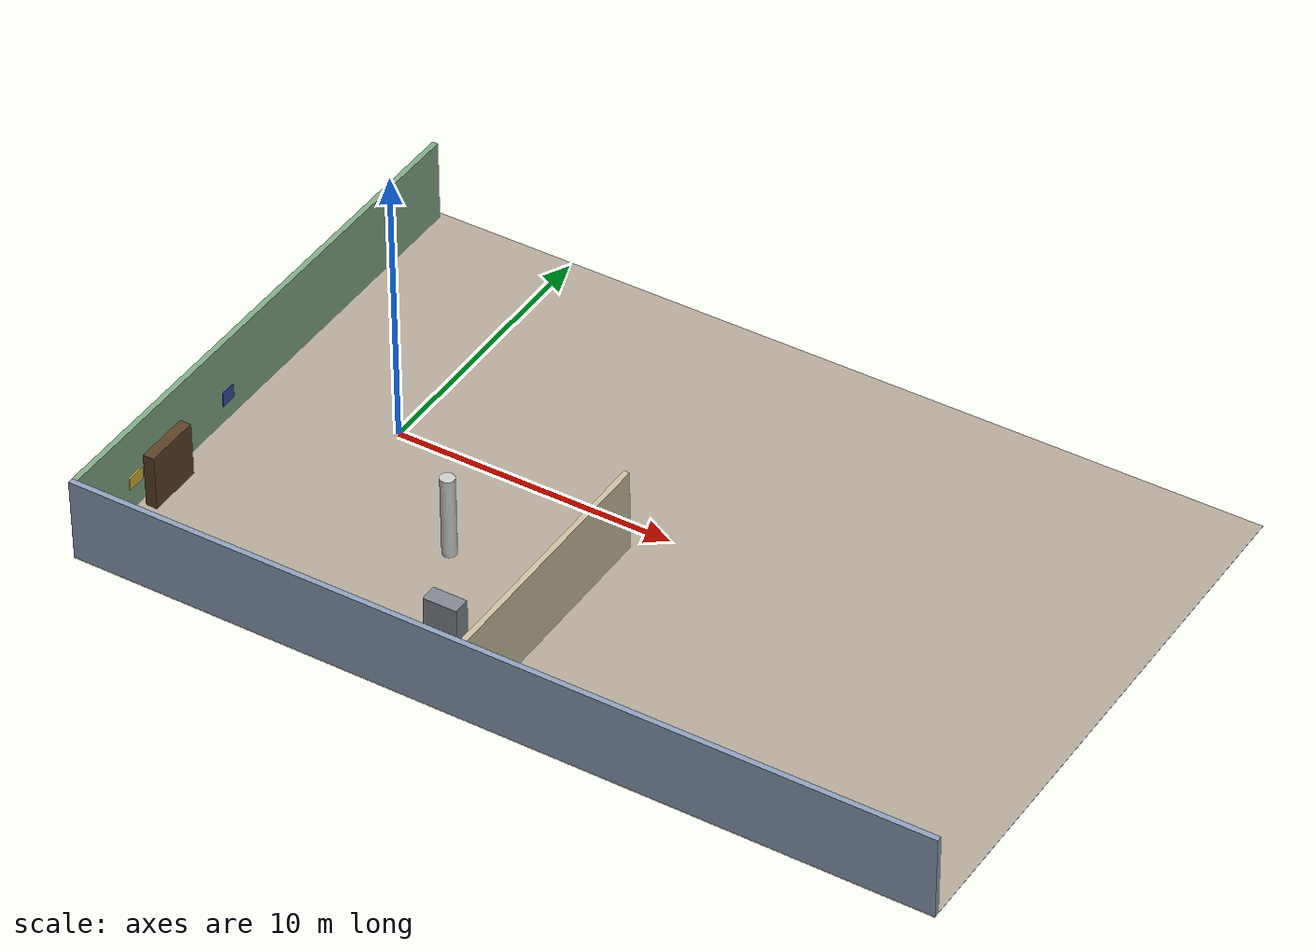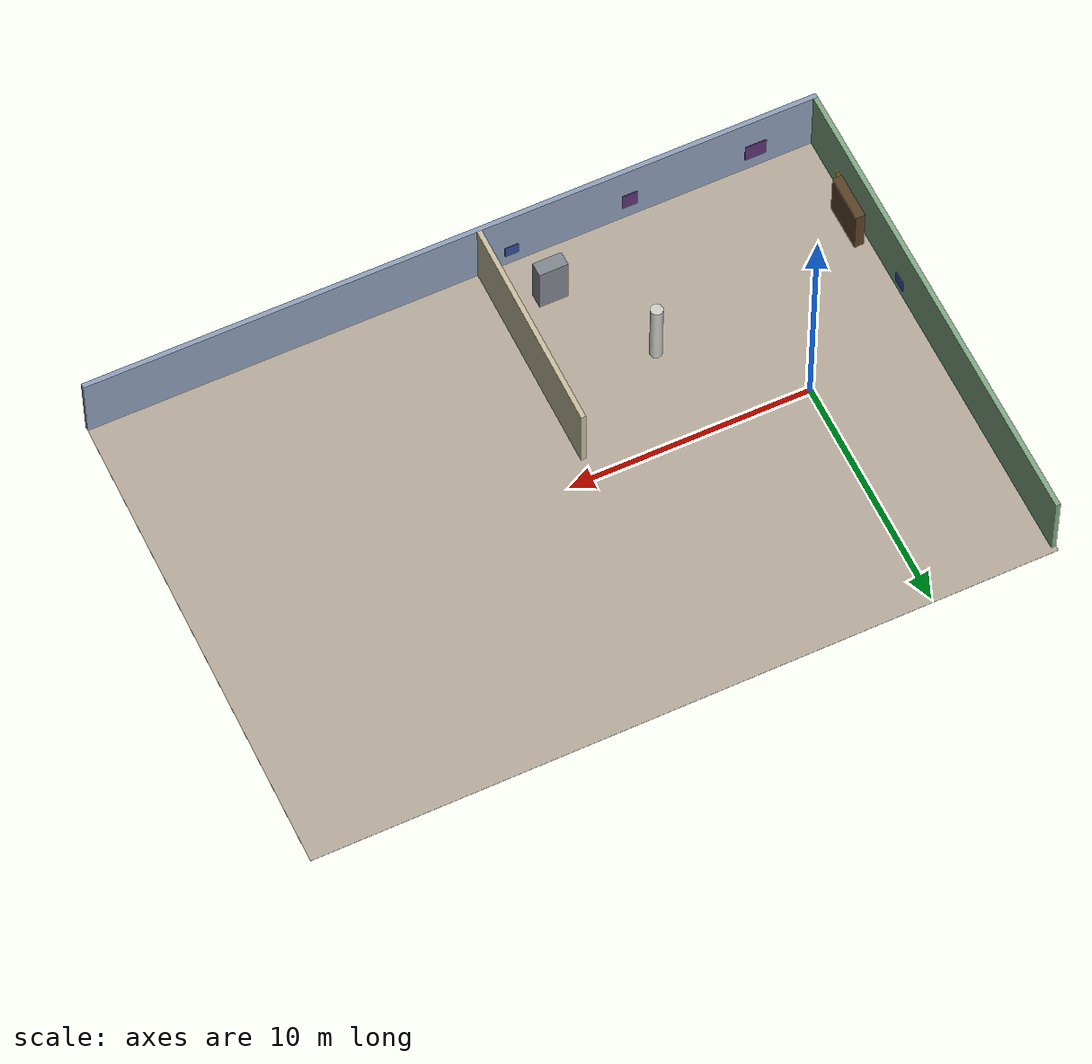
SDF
<sdf version="1.9">
 <world name="hyrak_indoor">
  <model name="floor">
   <static>true</static>
   <pose>10.000 0.000 -0.010 0 0 0.0000</pose>
   <link name="link">
    <collision name="c"><geometry><box><size>30.400 20.400 0.020</size></box></geometry></collision>
    <visual name="v">
     <geometry><box><size>30.400 20.400 0.020</size></box></geometry>
     <material>
      <ambient>0.7 0.66 0.6 1</ambient>
      <diffuse>0.7 0.66 0.6 1</diffuse>
      <specular>0.05 0.05 0.05 1</specular>
      <pbr>
       <metal>
        <albedo_map>model://hyrak_indoor_assets/materials/textures/floor.jpg</albedo_map>
        <roughness>0.9</roughness>
        <metalness>0</metalness>
       </metal>
      </pbr>
     </material>
     <cast_shadows>false</cast_shadows>
    </visual>
   </link>
  </model>
  <model name="wall_south_0">
   <static>true</static>
   <pose>10.000 -10.100 1.500 0 0 0.0000</pose>
   <link name="link">
    <collision name="c"><geometry><box><size>30.400 0.200 3.000</size></box></geometry></collision>
    <visual name="v">
     <geometry><box><size>30.400 0.200 3.000</size></box></geometry>
     <material>
      <ambient>0.55 0.62 0.72 1</ambient>
      <diffuse>0.55 0.62 0.72 1</diffuse>
      <specular>0.05 0.05 0.05 1</specular>
     </material>
     <cast_shadows>false</cast_shadows>
    </visual>
   </link>
  </model>
  <model name="wall_west_0">
   <static>true</static>
   <pose>-5.100 0.000 1.500 0 0 0.0000</pose>
   <link name="link">
    <collision name="c"><geometry><box><size>0.200 20.000 3.000</size></box></geometry></collision>
    <visual name="v">
     <geometry><box><size>0.200 20.000 3.000</size></box></geometry>
     <material>
      <ambient>0.5 0.66 0.52 1</ambient>
      <diffuse>0.5 0.66 0.52 1</diffuse>
      <specular>0.05 0.05 0.05 1</specular>
     </material>
     <cast_shadows>false</cast_shadows>
    </visual>
   </link>
  </model>
  <model name="wall_a_0">
   <static>true</static>
   <pose>9.000 -5.450 1.500 0 0 0.0000</pose>
   <link name="link">
    <collision name="c"><geometry><box><size>0.200 9.100 3.000</size></box></geometry></collision>
    <visual name="v">
     <geometry><box><size>0.200 9.100 3.000</size></box></geometry>
     <material>
      <ambient>0.78 0.74 0.62 1</ambient>
      <diffuse>0.78 0.74 0.62 1</diffuse>
      <specular>0.05 0.05 0.05 1</specular>
     </material>
     <cast_shadows>false</cast_shadows>
    </visual>
   </link>
  </model>
  <model name="pan_s0">
   <static>true</static>
   <pose>-2.538 -9.870 1.279 0 0 0.0000</pose>
   <link name="link">
    <collision name="c"><geometry><box><size>0.892 0.040 0.862</size></box></geometry></collision>
    <visual name="v">
     <geometry><box><size>0.892 0.040 0.862</size></box></geometry>
     <material>
      <ambient>0.35 0.2 0.45 1</ambient>
      <diffuse>0.35 0.2 0.45 1</diffuse>
      <specular>0.05 0.05 0.05 1</specular>
     </material>
     <cast_shadows>false</cast_shadows>
    </visual>
   </link>
  </model>
  <model name="pan_s1">
   <static>true</static>
   <pose>2.784 -9.870 1.285 0 0 0.0000</pose>
   <link name="link">
    <collision name="c"><geometry><box><size>0.633 0.040 0.802</size></box></geometry></collision>
    <visual name="v">
     <geometry><box><size>0.633 0.040 0.802</size></box></geometry>
     <material>
      <ambient>0.35 0.2 0.45 1</ambient>
      <diffuse>0.35 0.2 0.45 1</diffuse>
      <specular>0.05 0.05 0.05 1</specular>
     </material>
     <cast_shadows>false</cast_shadows>
    </visual>
   </link>
  </model>
  <model name="pan_s2">
   <static>true</static>
   <pose>7.734 -9.870 1.054 0 0 0.0000</pose>
   <link name="link">
    <collision name="c"><geometry><box><size>0.566 0.040 0.552</size></box></geometry></collision>
    <visual name="v">
     <geometry><box><size>0.566 0.040 0.552</size></box></geometry>
     <material>
      <ambient>0.2 0.3 0.6 1</ambient>
      <diffuse>0.2 0.3 0.6 1</diffuse>
      <specular>0.05 0.05 0.05 1</specular>
     </material>
     <cast_shadows>false</cast_shadows>
    </visual>
   </link>
  </model>
  <model name="pan_w0">
   <static>true</static>
   <pose>-4.870 -7.277 1.200 0 0 0.0000</pose>
   <link name="link">
    <collision name="c"><geometry><box><size>0.040 0.689 0.444</size></box></geometry></collision>
    <visual name="v">
     <geometry><box><size>0.040 0.689 0.444</size></box></geometry>
     <material>
      <ambient>0.85 0.7 0.2 1</ambient>
      <diffuse>0.85 0.7 0.2 1</diffuse>
      <specular>0.05 0.05 0.05 1</specular>
     </material>
     <cast_shadows>false</cast_shadows>
    </visual>
   </link>
  </model>
  <model name="pan_w1">
   <static>true</static>
   <pose>-4.870 -2.294 1.061 0 0 0.0000</pose>
   <link name="link">
    <collision name="c"><geometry><box><size>0.040 0.583 0.523</size></box></geometry></collision>
    <visual name="v">
     <geometry><box><size>0.040 0.583 0.523</size></box></geometry>
     <material>
      <ambient>0.2 0.3 0.6 1</ambient>
      <diffuse>0.2 0.3 0.6 1</diffuse>
      <specular>0.05 0.05 0.05 1</specular>
     </material>
     <cast_shadows>false</cast_shadows>
    </visual>
   </link>
  </model>
  <model name="a_shelf">
   <static>true</static>
   <pose>-4.550 -6.000 1.000 0 0 0.0000</pose>
   <link name="link">
    <collision name="c"><geometry><box><size>0.400 2.000 2.000</size></box></geometry></collision>
    <visual name="v">
     <geometry><box><size>0.400 2.000 2.000</size></box></geometry>
     <material>
      <ambient>0.35 0.25 0.15 1</ambient>
      <diffuse>0.35 0.25 0.15 1</diffuse>
      <specular>0.05 0.05 0.05 1</specular>
     </material>
     <cast_shadows>false</cast_shadows>
    </visual>
   </link>
  </model>
  <model name="a_cabinet">
   <static>true</static>
   <pose>7.000 -8.000 1.100 0 0 0.0000</pose>
   <link name="link">
    <collision name="c"><geometry><box><size>1.200 0.600 2.200</size></box></geometry></collision>
    <visual name="v">
     <geometry><box><size>1.200 0.600 2.200</size></box></geometry>
     <material>
      <ambient>0.5 0.52 0.55 1</ambient>
      <diffuse>0.5 0.52 0.55 1</diffuse>
      <specular>0.05 0.05 0.05 1</specular>
     </material>
     <cast_shadows>false</cast_shadows>
    </visual>
   </link>
  </model>
  <model name="a_pillar_1">
   <static>true</static>
   <pose>4.500 -4.000 1.500 0 0 0</pose>
   <link name="link">
    <collision name="c">
     <geometry><cylinder><radius>0.25</radius><length>3.0</length></cylinder></geometry>
    </collision>
    <visual name="v">
     <geometry><cylinder><radius>0.25</radius><length>3.0</length></cylinder></geometry>
     <material>
      <ambient>0.8 0.8 0.78 1</ambient>
      <diffuse>0.8 0.8 0.78 1</diffuse>
      <specular>0.05 0.05 0.05 1</specular>
     </material>
     <cast_shadows>false</cast_shadows>
    </visual>
   </link>
  </model>
 </world>
</sdf>
